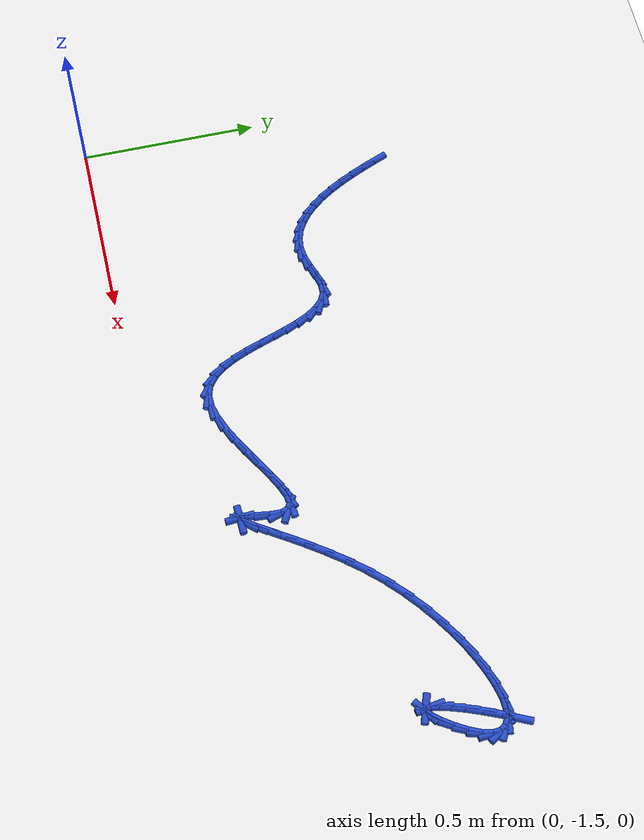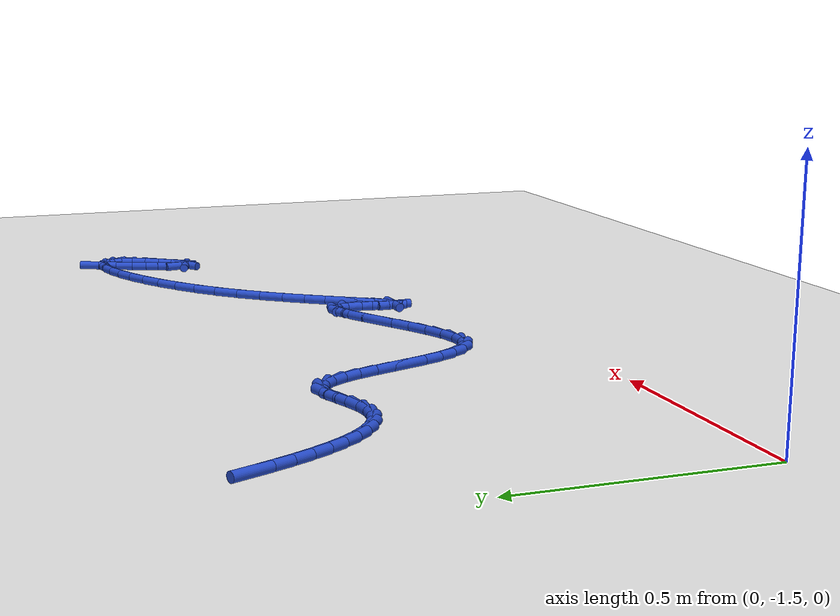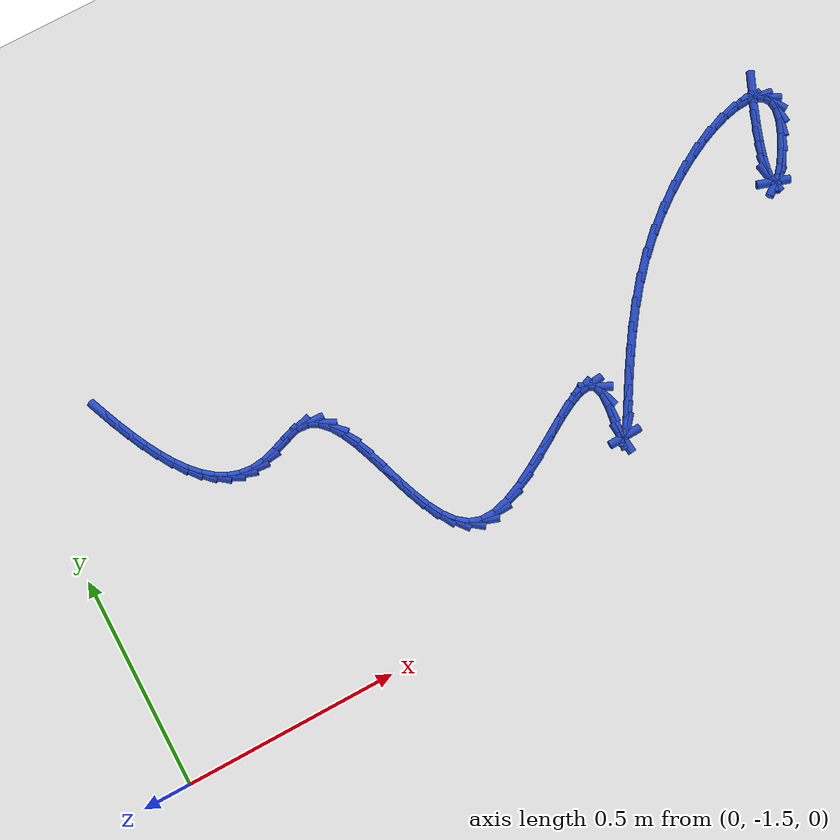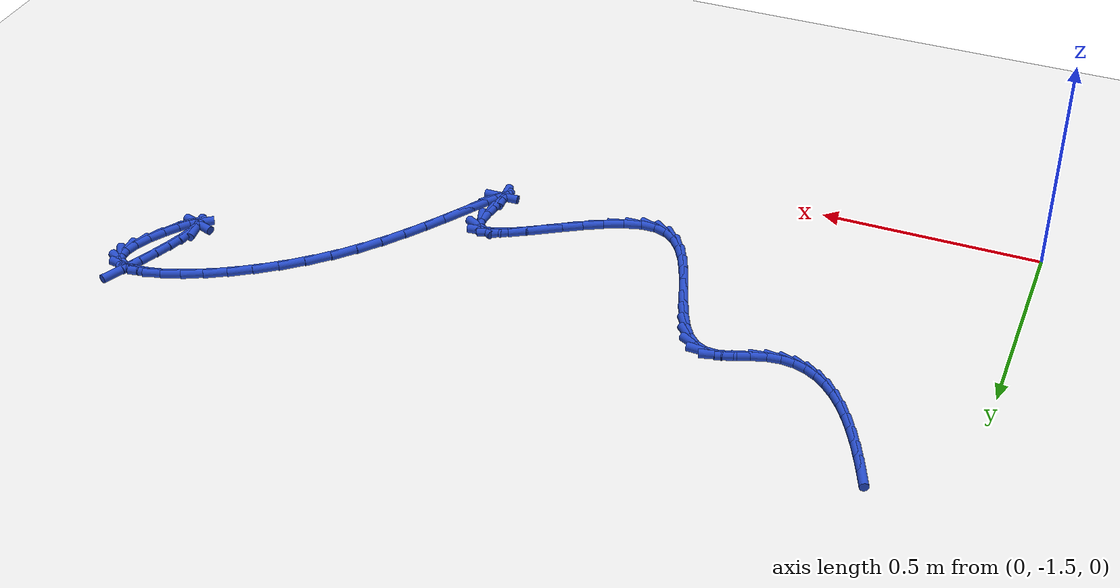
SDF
<sdf version="1.6">
 <world name="default">
  <model name="ground_plane">
   <static>1</static>
   <link name="link">
    <collision name="collision">
     <geometry><plane><normal>0 0 1</normal><size>100 100</size></plane></geometry>
     <surface><friction><ode><mu>100</mu><mu2>50</mu2></ode></friction></surface>
    </collision>
    <visual name="visual">
     <cast_shadows>0</cast_shadows>
     <geometry><plane><normal>0 0 1</normal><size>100 100</size></plane></geometry>
     <material>
      <script><uri>file://media/materials/scripts/gazebo.material</uri><name>Gazebo/WhiteGlow</name></script>
     </material>
    </visual>
   </link>
  </model>
  <model name="line">
   <link name="link_147">
    <pose>1.880417454567638 -0.7078474709768873 0.01 0 1.57 1.140920649720125</pose>
    <collision name="collision">
     <geometry><cylinder><radius>0.01</radius><length>0.08</length></cylinder></geometry>
    </collision>
    <visual name="visual">
     <material>
      <script><name>Gazebo/Blue</name><uri>file://media/materials/scripts/gazebo.material</uri></script>
     </material>
     <geometry><cylinder><radius>0.01</radius><length>0.08</length></cylinder></geometry>
    </visual>
   </link>
   <link name="link_148">
    <pose>1.8598282432529958 -0.7527559408236332 0.01 0 1.57 1.1755597719776898</pose>
    <collision name="collision">
     <geometry><cylinder><radius>0.01</radius><length>0.08</length></cylinder></geometry>
    </collision>
    <visual name="visual">
     <material>
      <script><name>Gazebo/Blue</name><uri>file://media/materials/scripts/gazebo.material</uri></script>
     </material>
     <geometry><cylinder><radius>0.01</radius><length>0.08</length></cylinder></geometry>
    </visual>
   </link>
   <link name="link_149">
    <pose>1.842050364201015 -0.7953693760039964 0.01 0 1.57 1.2130107739233884</pose>
    <collision name="collision">
     <geometry><cylinder><radius>0.01</radius><length>0.08</length></cylinder></geometry>
    </collision>
    <visual name="visual">
     <material>
      <script><name>Gazebo/Blue</name><uri>file://media/materials/scripts/gazebo.material</uri></script>
     </material>
     <geometry><cylinder><radius>0.01</radius><length>0.08</length></cylinder></geometry>
    </visual>
   </link>
   <link name="link_150">
    <pose>1.8274508547640917 -0.83441836433859 0.01 0 1.57 1.2583051965925764</pose>
    <collision name="collision">
     <geometry><cylinder><radius>0.01</radius><length>0.08</length></cylinder></geometry>
    </collision>
    <visual name="visual">
     <material>
      <script><name>Gazebo/Blue</name><uri>file://media/materials/scripts/gazebo.material</uri></script>
     </material>
     <geometry><cylinder><radius>0.01</radius><length>0.08</length></cylinder></geometry>
    </visual>
   </link>
   <link name="link_151">
    <pose>1.816396752294619 -0.8686334936480264 0.01 0 1.57 1.322014872801005</pose>
    <collision name="collision">
     <geometry><cylinder><radius>0.01</radius><length>0.08</length></cylinder></geometry>
    </collision>
    <visual name="visual">
     <material>
      <script><name>Gazebo/Blue</name><uri>file://media/materials/scripts/gazebo.material</uri></script>
     </material>
     <geometry><cylinder><radius>0.01</radius><length>0.08</length></cylinder></geometry>
    </visual>
   </link>
   <link name="link_152">
    <pose>1.8092550941449927 -0.8967453517529187 0.01 0 1.57 1.4336544140061014</pose>
    <collision name="collision">
     <geometry><cylinder><radius>0.01</radius><length>0.08</length></cylinder></geometry>
    </collision>
    <visual name="visual">
     <material>
      <script><name>Gazebo/Blue</name><uri>file://media/materials/scripts/gazebo.material</uri></script>
     </material>
     <geometry><cylinder><radius>0.01</radius><length>0.08</length></cylinder></geometry>
    </visual>
   </link>
   <link name="link_153">
    <pose>1.806392917667607 -0.9174845264738793 0.01 0 1.57 -1.424350368250277</pose>
    <collision name="collision">
     <geometry><cylinder><radius>0.01</radius><length>0.08</length></cylinder></geometry>
    </collision>
    <visual name="visual">
     <material>
      <script><name>Gazebo/Blue</name><uri>file://media/materials/scripts/gazebo.material</uri></script>
     </material>
     <geometry><cylinder><radius>0.01</radius><length>0.08</length></cylinder></geometry>
    </visual>
   </link>
   <link name="link_154">
    <pose>1.8081772602148565 -0.929581605631521 0.01 0 1.57 -0.3110692734461836</pose>
    <collision name="collision">
     <geometry><cylinder><radius>0.01</radius><length>0.08</length></cylinder></geometry>
    </collision>
    <visual name="visual">
     <material>
      <script><name>Gazebo/Blue</name><uri>file://media/materials/scripts/gazebo.material</uri></script>
     </material>
     <geometry><cylinder><radius>0.01</radius><length>0.08</length></cylinder></geometry>
    </visual>
   </link>
   <link name="link_155">
    <pose>1.8149751591391363 -0.9317671770464565 0.01 0 1.57 0.636181770355487</pose>
    <collision name="collision">
     <geometry><cylinder><radius>0.01</radius><length>0.08</length></cylinder></geometry>
    </collision>
    <visual name="visual">
     <material>
      <script><name>Gazebo/Blue</name><uri>file://media/materials/scripts/gazebo.material</uri></script>
     </material>
     <geometry><cylinder><radius>0.01</radius><length>0.08</length></cylinder></geometry>
    </visual>
   </link>
   <link name="link_156">
    <pose>1.82715365179284 -0.9227718285392981 0.01 0 1.57 0.8708792521143253</pose>
    <collision name="collision">
     <geometry><cylinder><radius>0.01</radius><length>0.08</length></cylinder></geometry>
    </collision>
    <visual name="visual">
     <material>
      <script><name>Gazebo/Blue</name><uri>file://media/materials/scripts/gazebo.material</uri></script>
     </material>
     <geometry><cylinder><radius>0.01</radius><length>0.08</length></cylinder></geometry>
    </visual>
   </link>
   <link name="link_157">
    <pose>1.84453478865988 -0.902132742456767 0.01 0 1.57 0.9699756141951363</pose>
    <collision name="collision">
     <geometry><cylinder><radius>0.01</radius><length>0.08</length></cylinder></geometry>
    </collision>
    <visual name="visual">
     <material>
      <script><name>Gazebo/Blue</name><uri>file://media/materials/scripts/gazebo.material</uri></script>
     </material>
     <geometry><cylinder><radius>0.01</radius><length>0.08</length></cylinder></geometry>
    </visual>
   </link>
   <link name="link_158">
    <pose>1.8644174460795855 -0.8731214635149055 0.01 0 1.57 1.0498729820408386</pose>
    <collision name="collision">
     <geometry><cylinder><radius>0.01</radius><length>0.08</length></cylinder></geometry>
    </collision>
    <visual name="visual">
     <material>
      <script><name>Gazebo/Blue</name><uri>file://media/materials/scripts/gazebo.material</uri></script>
     </material>
     <geometry><cylinder><radius>0.01</radius><length>0.08</length></cylinder></geometry>
    </visual>
   </link>
   <link name="link_159">
    <pose>1.8833708057365026 -0.8400895032111889 0.01 0 1.57 1.1510566192938005</pose>
    <collision name="collision">
     <geometry><cylinder><radius>0.01</radius><length>0.08</length></cylinder></geometry>
    </collision>
    <visual name="visual">
     <material>
      <script><name>Gazebo/Blue</name><uri>file://media/materials/scripts/gazebo.material</uri></script>
     </material>
     <geometry><cylinder><radius>0.01</radius><length>0.08</length></cylinder></geometry>
    </visual>
   </link>
   <link name="link_160">
    <pose>1.8979639763291032 -0.8073884810643512 0.01 0 1.57 1.3296470702275465</pose>
    <collision name="collision">
     <geometry><cylinder><radius>0.01</radius><length>0.08</length></cylinder></geometry>
    </collision>
    <visual name="visual">
     <material>
      <script><name>Gazebo/Blue</name><uri>file://media/materials/scripts/gazebo.material</uri></script>
     </material>
     <geometry><cylinder><radius>0.01</radius><length>0.08</length></cylinder></geometry>
    </visual>
   </link>
   <link name="link_161">
    <pose>1.9048866897512042 -0.7792399465233099 0.01 0 1.57 -1.4844622214566678</pose>
    <collision name="collision">
     <geometry><cylinder><radius>0.01</radius><length>0.08</length></cylinder></geometry>
    </collision>
    <visual name="visual">
     <material>
      <script><name>Gazebo/Blue</name><uri>file://media/materials/scripts/gazebo.material</uri></script>
     </material>
     <geometry><cylinder><radius>0.01</radius><length>0.08</length></cylinder></geometry>
    </visual>
   </link>
   <link name="link_162">
    <pose>1.9030065830614629 -0.7575169763735492 0.01 0 1.57 -1.0001750099670772</pose>
    <collision name="collision">
     <geometry><cylinder><radius>0.01</radius><length>0.08</length></cylinder></geometry>
    </collision>
    <visual name="visual">
     <material>
      <script><name>Gazebo/Blue</name><uri>file://media/materials/scripts/gazebo.material</uri></script>
     </material>
     <geometry><cylinder><radius>0.01</radius><length>0.08</length></cylinder></geometry>
    </visual>
   </link>
   <link name="link_163">
    <pose>1.8930817963716158 -0.742054085386022 0.01 0 1.57 -0.5030355205086069</pose>
    <collision name="collision">
     <geometry><cylinder><radius>0.01</radius><length>0.08</length></cylinder></geometry>
    </collision>
    <visual name="visual">
     <material>
      <script><name>Gazebo/Blue</name><uri>file://media/materials/scripts/gazebo.material</uri></script>
     </material>
     <geometry><cylinder><radius>0.01</radius><length>0.08</length></cylinder></geometry>
    </visual>
   </link>
   <link name="link_164">
    <pose>1.8759332514425517 -0.7326180897977026 0.01 0 1.57 -0.15343709844425876</pose>
    <collision name="collision">
     <geometry><cylinder><radius>0.01</radius><length>0.08</length></cylinder></geometry>
    </collision>
    <visual name="visual">
     <material>
      <script><name>Gazebo/Blue</name><uri>file://media/materials/scripts/gazebo.material</uri></script>
     </material>
     <geometry><cylinder><radius>0.01</radius><length>0.08</length></cylinder></geometry>
    </visual>
   </link>
   <link name="link_165">
    <pose>1.8523818700351617 -0.7289758058455655 0.01 0 1.57 0.06574879093967434</pose>
    <collision name="collision">
     <geometry><cylinder><radius>0.01</radius><length>0.08</length></cylinder></geometry>
    </collision>
    <visual name="visual">
     <material>
      <script><name>Gazebo/Blue</name><uri>file://media/materials/scripts/gazebo.material</uri></script>
     </material>
     <geometry><cylinder><radius>0.01</radius><length>0.08</length></cylinder></geometry>
    </visual>
   </link>
   <link name="link_166">
    <pose>1.8232485739103366 -0.7308940497665853 0.01 0 1.57 0.21060037316124847</pose>
    <collision name="collision">
     <geometry><cylinder><radius>0.01</radius><length>0.08</length></cylinder></geometry>
    </collision>
    <visual name="visual">
     <material>
      <script><name>Gazebo/Blue</name><uri>file://media/materials/scripts/gazebo.material</uri></script>
     </material>
     <geometry><cylinder><radius>0.01</radius><length>0.08</length></cylinder></geometry>
    </visual>
   </link>
   <link name="link_167">
    <pose>1.7893542848289654 -0.7381396377977363 0.01 0 1.57 0.31527339754669087</pose>
    <collision name="collision">
     <geometry><cylinder><radius>0.01</radius><length>0.08</length></cylinder></geometry>
    </collision>
    <visual name="visual">
     <material>
      <script><name>Gazebo/Blue</name><uri>file://media/materials/scripts/gazebo.material</uri></script>
     </material>
     <geometry><cylinder><radius>0.01</radius><length>0.08</length></cylinder></geometry>
    </visual>
   </link>
   <link name="link_168">
    <pose>1.751519924551939 -0.7504793861759929 0.01 0 1.57 0.39763319896849536</pose>
    <collision name="collision">
     <geometry><cylinder><radius>0.01</radius><length>0.08</length></cylinder></geometry>
    </collision>
    <visual name="visual">
     <material>
      <script><name>Gazebo/Blue</name><uri>file://media/materials/scripts/gazebo.material</uri></script>
     </material>
     <geometry><cylinder><radius>0.01</radius><length>0.08</length></cylinder></geometry>
    </visual>
   </link>
   <link name="link_169">
    <pose>1.710566414840147 -0.767680111138329 0.01 0 1.57 0.46738885182836876</pose>
    <collision name="collision">
     <geometry><cylinder><radius>0.01</radius><length>0.08</length></cylinder></geometry>
    </collision>
    <visual name="visual">
     <material>
      <script><name>Gazebo/Blue</name><uri>file://media/materials/scripts/gazebo.material</uri></script>
     </material>
     <geometry><cylinder><radius>0.01</radius><length>0.08</length></cylinder></geometry>
    </visual>
   </link>
   <link name="link_170">
    <pose>1.66731467745448 -0.78950862892172 0.01 0 1.57 0.5302599180292319</pose>
    <collision name="collision">
     <geometry><cylinder><radius>0.01</radius><length>0.08</length></cylinder></geometry>
    </collision>
    <visual name="visual">
     <material>
      <script><name>Gazebo/Blue</name><uri>file://media/materials/scripts/gazebo.material</uri></script>
     </material>
     <geometry><cylinder><radius>0.01</radius><length>0.08</length></cylinder></geometry>
    </visual>
   </link>
   <link name="link_171">
    <pose>1.6225856341558278 -0.8157317557631396 0.01 0 1.57 0.5899464922059662</pose>
    <collision name="collision">
     <geometry><cylinder><radius>0.01</radius><length>0.08</length></cylinder></geometry>
    </collision>
    <visual name="visual">
     <material>
      <script><name>Gazebo/Blue</name><uri>file://media/materials/scripts/gazebo.material</uri></script>
     </material>
     <geometry><cylinder><radius>0.01</radius><length>0.08</length></cylinder></geometry>
    </visual>
   </link>
   <link name="link_172">
    <pose>1.5772002067050812 -0.8461163078995626 0.01 0 1.57 0.649097887391694</pose>
    <collision name="collision">
     <geometry><cylinder><radius>0.01</radius><length>0.08</length></cylinder></geometry>
    </collision>
    <visual name="visual">
     <material>
      <script><name>Gazebo/Blue</name><uri>file://media/materials/scripts/gazebo.material</uri></script>
     </material>
     <geometry><cylinder><radius>0.01</radius><length>0.08</length></cylinder></geometry>
    </visual>
   </link>
   <link name="link_173">
    <pose>1.53197931686313 -0.8804291015679632 0.01 0 1.57 0.7098209582909975</pose>
    <collision name="collision">
     <geometry><cylinder><radius>0.01</radius><length>0.08</length></cylinder></geometry>
    </collision>
    <visual name="visual">
     <material>
      <script><name>Gazebo/Blue</name><uri>file://media/materials/scripts/gazebo.material</uri></script>
     </material>
     <geometry><cylinder><radius>0.01</radius><length>0.08</length></cylinder></geometry>
    </visual>
   </link>
   <link name="link_174">
    <pose>1.4877438863908643 -0.9184369530053158 0.01 0 1.57 0.773964360034135</pose>
    <collision name="collision">
     <geometry><cylinder><radius>0.01</radius><length>0.08</length></cylinder></geometry>
    </collision>
    <visual name="visual">
     <material>
      <script><name>Gazebo/Blue</name><uri>file://media/materials/scripts/gazebo.material</uri></script>
     </material>
     <geometry><cylinder><radius>0.01</radius><length>0.08</length></cylinder></geometry>
    </visual>
   </link>
   <link name="link_175">
    <pose>1.4453148370491742 -0.959906678448595 0.01 0 1.57 0.8411513842361525</pose>
    <collision name="collision">
     <geometry><cylinder><radius>0.01</radius><length>0.08</length></cylinder></geometry>
    </collision>
    <visual name="visual">
     <material>
      <script><name>Gazebo/Blue</name><uri>file://media/materials/scripts/gazebo.material</uri></script>
     </material>
     <geometry><cylinder><radius>0.01</radius><length>0.08</length></cylinder></geometry>
    </visual>
   </link>
   <link name="link_176">
    <pose>1.405458281396202 -1.0044750805634708 0.01 0 1.57 0.8986713990842615</pose>
    <collision name="collision">
     <geometry><cylinder><radius>0.01</radius><length>0.08</length></cylinder></geometry>
    </collision>
    <visual name="visual">
     <material>
      <script><name>Gazebo/Blue</name><uri>file://media/materials/scripts/gazebo.material</uri></script>
     </material>
     <geometry><cylinder><radius>0.01</radius><length>0.08</length></cylinder></geometry>
    </visual>
   </link>
   <link name="link_177">
    <pose>1.368551545903223 -1.050856717846931 0.01 0 1.57 0.9431022279500699</pose>
    <collision name="collision">
     <geometry><cylinder><radius>0.01</radius><length>0.08</length></cylinder></geometry>
    </collision>
    <visual name="visual">
     <material>
      <script><name>Gazebo/Blue</name><uri>file://media/materials/scripts/gazebo.material</uri></script>
     </material>
     <geometry><cylinder><radius>0.01</radius><length>0.08</length></cylinder></geometry>
    </visual>
   </link>
   <link name="link_178">
    <pose>1.3348038775784756 -1.0973674454732265 0.01 0 1.57 0.9764964773916157</pose>
    <collision name="collision">
     <geometry><cylinder><radius>0.01</radius><length>0.08</length></cylinder></geometry>
    </collision>
    <visual name="visual">
     <material>
      <script><name>Gazebo/Blue</name><uri>file://media/materials/scripts/gazebo.material</uri></script>
     </material>
     <geometry><cylinder><radius>0.01</radius><length>0.08</length></cylinder></geometry>
    </visual>
   </link>
   <link name="link_179">
    <pose>1.3044238543030713 -1.142321531372076 0.01 0 1.57 0.9996432924485401</pose>
    <collision name="collision">
     <geometry><cylinder><radius>0.01</radius><length>0.08</length></cylinder></geometry>
    </collision>
    <visual name="visual">
     <material>
      <script><name>Gazebo/Blue</name><uri>file://media/materials/scripts/gazebo.material</uri></script>
     </material>
     <geometry><cylinder><radius>0.01</radius><length>0.08</length></cylinder></geometry>
    </visual>
   </link>
   <link name="link_180">
    <pose>1.2776200539581193 -1.184033243473196 0.01 0 1.57 1.0116254781381082</pose>
    <collision name="collision">
     <geometry><cylinder><radius>0.01</radius><length>0.08</length></cylinder></geometry>
    </collision>
    <visual name="visual">
     <material>
      <script><name>Gazebo/Blue</name><uri>file://media/materials/scripts/gazebo.material</uri></script>
     </material>
     <geometry><cylinder><radius>0.01</radius><length>0.08</length></cylinder></geometry>
    </visual>
   </link>
   <link name="link_181">
    <pose>1.25460105442473 -1.220816849706305 0.01 0 1.57 1.00816677869452</pose>
    <collision name="collision">
     <geometry><cylinder><radius>0.01</radius><length>0.08</length></cylinder></geometry>
    </collision>
    <visual name="visual">
     <material>
      <script><name>Gazebo/Blue</name><uri>file://media/materials/scripts/gazebo.material</uri></script>
     </material>
     <geometry><cylinder><radius>0.01</radius><length>0.08</length></cylinder></geometry>
    </visual>
   </link>
   <link name="link_182">
    <pose>1.2355754335840137 -1.2509866180011202 0.01 0 1.57 0.9751242100211122</pose>
    <collision name="collision">
     <geometry><cylinder><radius>0.01</radius><length>0.08</length></cylinder></geometry>
    </collision>
    <visual name="visual">
     <material>
      <script><name>Gazebo/Blue</name><uri>file://media/materials/scripts/gazebo.material</uri></script>
     </material>
     <geometry><cylinder><radius>0.01</radius><length>0.08</length></cylinder></geometry>
    </visual>
   </link>
   <link name="link_183">
    <pose>1.2207517693170802 -1.2728568162873588 0.01 0 1.57 0.8513068980043053</pose>
    <collision name="collision">
     <geometry><cylinder><radius>0.01</radius><length>0.08</length></cylinder></geometry>
    </collision>
    <visual name="visual">
     <material>
      <script><name>Gazebo/Blue</name><uri>file://media/materials/scripts/gazebo.material</uri></script>
     </material>
     <geometry><cylinder><radius>0.01</radius><length>0.08</length></cylinder></geometry>
    </visual>
   </link>
   <link name="link_184">
    <pose>1.2103386395050404 -1.284741712494739 0.01 0 1.57 0.03689409219474732</pose>
    <collision name="collision">
     <geometry><cylinder><radius>0.01</radius><length>0.08</length></cylinder></geometry>
    </collision>
    <visual name="visual">
     <material>
      <script><name>Gazebo/Blue</name><uri>file://media/materials/scripts/gazebo.material</uri></script>
     </material>
     <geometry><cylinder><radius>0.01</radius><length>0.08</length></cylinder></geometry>
    </visual>
   </link>
   <link name="link_185">
    <pose>1.204544622029004 -1.2849555745529782 0.01 0 1.57 -1.4974037498814896</pose>
    <collision name="collision">
     <geometry><cylinder><radius>0.01</radius><length>0.08</length></cylinder></geometry>
    </collision>
    <visual name="visual">
     <material>
      <script><name>Gazebo/Blue</name><uri>file://media/materials/scripts/gazebo.material</uri></script>
     </material>
     <geometry><cylinder><radius>0.01</radius><length>0.08</length></cylinder></geometry>
    </visual>
   </link>
   <link name="link_186">
    <pose>1.203578294770081 -1.2718126703917934 0.01 0 1.57 1.4330193704455638</pose>
    <collision name="collision">
     <geometry><cylinder><radius>0.01</radius><length>0.08</length></cylinder></geometry>
    </collision>
    <visual name="visual">
     <material>
      <script><name>Gazebo/Blue</name><uri>file://media/materials/scripts/gazebo.material</uri></script>
     </material>
     <geometry><cylinder><radius>0.01</radius><length>0.08</length></cylinder></geometry>
    </visual>
   </link>
   <link name="link_187">
    <pose>1.2074112245600463 -1.2441691057984243 0.01 0 1.57 1.4204514153569598</pose>
    <collision name="collision">
     <geometry><cylinder><radius>0.01</radius><length>0.08</length></cylinder></geometry>
    </collision>
    <visual name="visual">
     <material>
      <script><name>Gazebo/Blue</name><uri>file://media/materials/scripts/gazebo.material</uri></script>
     </material>
     <geometry><cylinder><radius>0.01</radius><length>0.08</length></cylinder></geometry>
    </visual>
   </link>
   <link name="link_188">
    <pose>1.2128848141817585 -1.2080369456882072 0.01 0 1.57 1.518901007698161</pose>
    <collision name="collision">
     <geometry><cylinder><radius>0.01</radius><length>0.08</length></cylinder></geometry>
    </collision>
    <visual name="visual">
     <material>
      <script><name>Gazebo/Blue</name><uri>file://media/materials/scripts/gazebo.material</uri></script>
     </material>
     <geometry><cylinder><radius>0.01</radius><length>0.08</length></cylinder></geometry>
    </visual>
   </link>
   <link name="link_189">
    <pose>1.21462743662847 -1.1744875267833925 0.01 0 1.57 -1.2675819271806505</pose>
    <collision name="collision">
     <geometry><cylinder><radius>0.01</radius><length>0.08</length></cylinder></geometry>
    </collision>
    <visual name="visual">
     <material>
      <script><name>Gazebo/Blue</name><uri>file://media/materials/scripts/gazebo.material</uri></script>
     </material>
     <geometry><cylinder><radius>0.01</radius><length>0.08</length></cylinder></geometry>
    </visual>
   </link>
   <link name="link_190">
    <pose>1.207967127831567 -1.1531991819728786 0.01 0 1.57 -0.4845759333067746</pose>
    <collision name="collision">
     <geometry><cylinder><radius>0.01</radius><length>0.08</length></cylinder></geometry>
    </collision>
    <visual name="visual">
     <material>
      <script><name>Gazebo/Blue</name><uri>file://media/materials/scripts/gazebo.material</uri></script>
     </material>
     <geometry><cylinder><radius>0.01</radius><length>0.08</length></cylinder></geometry>
    </visual>
   </link>
   <link name="link_191">
    <pose>1.1925856788463718 -1.1451017573844713 0.01 0 1.57 0.12452640845875326</pose>
    <collision name="collision">
     <geometry><cylinder><radius>0.01</radius><length>0.08</length></cylinder></geometry>
    </collision>
    <visual name="visual">
     <material>
      <script><name>Gazebo/Blue</name><uri>file://media/materials/scripts/gazebo.material</uri></script>
     </material>
     <geometry><cylinder><radius>0.01</radius><length>0.08</length></cylinder></geometry>
    </visual>
   </link>
   <link name="link_192">
    <pose>1.1697392524144714 -1.1479615381596038 0.01 0 1.57 0.37925074746241205</pose>
    <collision name="collision">
     <geometry><cylinder><radius>0.01</radius><length>0.08</length></cylinder></geometry>
    </collision>
    <visual name="visual">
     <material>
      <script><name>Gazebo/Blue</name><uri>file://media/materials/scripts/gazebo.material</uri></script>
     </material>
     <geometry><cylinder><radius>0.01</radius><length>0.08</length></cylinder></geometry>
    </visual>
   </link>
   <link name="link_193">
    <pose>1.1406861675346531 -1.1595404766311217 0.01 0 1.57 0.48826036203750894</pose>
    <collision name="collision">
     <geometry><cylinder><radius>0.01</radius><length>0.08</length></cylinder></geometry>
    </collision>
    <visual name="visual">
     <material>
      <script><name>Gazebo/Blue</name><uri>file://media/materials/scripts/gazebo.material</uri></script>
     </material>
     <geometry><cylinder><radius>0.01</radius><length>0.08</length></cylinder></geometry>
    </visual>
   </link>
   <link name="link_194">
    <pose>1.1066847432057059 -1.1776005251318724 0.01 0 1.57 0.5343154877263823</pose>
    <collision name="collision">
     <geometry><cylinder><radius>0.01</radius><length>0.08</length></cylinder></geometry>
    </collision>
    <visual name="visual">
     <material>
      <script><name>Gazebo/Blue</name><uri>file://media/materials/scripts/gazebo.material</uri></script>
     </material>
     <geometry><cylinder><radius>0.01</radius><length>0.08</length></cylinder></geometry>
    </visual>
   </link>
   <link name="link_195">
    <pose>1.0689932984264179 -1.1999036359947024 0.01 0 1.57 0.5447010732686066</pose>
    <collision name="collision">
     <geometry><cylinder><radius>0.01</radius><length>0.08</length></cylinder></geometry>
    </collision>
    <visual name="visual">
     <material>
      <script><name>Gazebo/Blue</name><uri>file://media/materials/scripts/gazebo.material</uri></script>
     </material>
     <geometry><cylinder><radius>0.01</radius><length>0.08</length></cylinder></geometry>
    </visual>
   </link>
   <link name="link_196">
    <pose>1.0288701521955772 -1.2242117615524575 0.01 0 1.57 0.5278115453043011</pose>
    <collision name="collision">
     <geometry><cylinder><radius>0.01</radius><length>0.08</length></cylinder></geometry>
    </collision>
    <visual name="visual">
     <material>
      <script><name>Gazebo/Blue</name><uri>file://media/materials/scripts/gazebo.material</uri></script>
     </material>
     <geometry><cylinder><radius>0.01</radius><length>0.08</length></cylinder></geometry>
    </visual>
   </link>
   <link name="link_197">
    <pose>0.9875736235119718 -1.248286854137985 0.01 0 1.57 0.48283669395664164</pose>
    <collision name="collision">
     <geometry><cylinder><radius>0.01</radius><length>0.08</length></cylinder></geometry>
    </collision>
    <visual name="visual">
     <material>
      <script><name>Gazebo/Blue</name><uri>file://media/materials/scripts/gazebo.material</uri></script>
     </material>
     <geometry><cylinder><radius>0.01</radius><length>0.08</length></cylinder></geometry>
    </visual>
   </link>
   <link name="link_198">
    <pose>0.94636203137439 -1.269890866084131 0.01 0 1.57 0.40082578469218155</pose>
    <collision name="collision">
     <geometry><cylinder><radius>0.01</radius><length>0.08</length></cylinder></geometry>
    </collision>
    <visual name="visual">
     <material>
      <script><name>Gazebo/Blue</name><uri>file://media/materials/scripts/gazebo.material</uri></script>
     </material>
     <geometry><cylinder><radius>0.01</radius><length>0.08</length></cylinder></geometry>
    </visual>
   </link>
   <link name="link_199">
    <pose>0.90649369478162 -1.2867857497237427 0.01 0 1.57 0.26085050248406694</pose>
    <collision name="collision">
     <geometry><cylinder><radius>0.01</radius><length>0.08</length></cylinder></geometry>
    </collision>
    <visual name="visual">
     <material>
      <script><name>Gazebo/Blue</name><uri>file://media/materials/scripts/gazebo.material</uri></script>
     </material>
     <geometry><cylinder><radius>0.01</radius><length>0.08</length></cylinder></geometry>
    </visual>
   </link>
   <link name="link_200">
    <pose>0.8692269327324501 -1.296733457389666 0.01 0 1.57 0.022840503875980654</pose>
    <collision name="collision">
     <geometry><cylinder><radius>0.01</radius><length>0.08</length></cylinder></geometry>
    </collision>
    <visual name="visual">
     <material>
      <script><name>Gazebo/Blue</name><uri>file://media/materials/scripts/gazebo.material</uri></script>
     </material>
     <geometry><cylinder><radius>0.01</radius><length>0.08</length></cylinder></geometry>
    </visual>
   </link>
   <link name="link_201">
    <pose>0.8358197216463128 -1.2974966276409916 0.01 0 1.57 -0.3285004937985048</pose>
    <collision name="collision">
     <geometry><cylinder><radius>0.01</radius><length>0.08</length></cylinder></geometry>
    </collision>
    <visual name="visual">
     <material>
      <script><name>Gazebo/Blue</name><uri>file://media/materials/scripts/gazebo.material</uri></script>
     </material>
     <geometry><cylinder><radius>0.01</radius><length>0.08</length></cylinder></geometry>
    </visual>
   </link>
   <link name="link_202">
    <pose>0.8070965071566919 -1.2877063115613623 0.01 0 1.57 -0.6634002639224547</pose>
    <collision name="collision">
     <geometry><cylinder><radius>0.01</radius><length>0.08</length></cylinder></geometry>
    </collision>
    <visual name="visual">
     <material>
      <script><name>Gazebo/Blue</name><uri>file://media/materials/scripts/gazebo.material</uri></script>
     </material>
     <geometry><cylinder><radius>0.01</radius><length>0.08</length></cylinder></geometry>
    </visual>
   </link>
   <link name="link_203">
    <pose>0.7826001407451384 -1.2685607421947391 0.01 0 1.57 -0.9075694595107189</pose>
    <collision name="collision">
     <geometry><cylinder><radius>0.01</radius><length>0.08</length></cylinder></geometry>
    </collision>
    <visual name="visual">
     <material>
      <script><name>Gazebo/Blue</name><uri>file://media/materials/scripts/gazebo.material</uri></script>
     </material>
     <geometry><cylinder><radius>0.01</radius><length>0.08</length></cylinder></geometry>
    </visual>
   </link>
   <link name="link_204">
    <pose>0.7616377903556045 -1.241730254088634 0.01 0 1.57 -1.0666362653607797</pose>
    <collision name="collision">
     <geometry><cylinder><radius>0.01</radius><length>0.08</length></cylinder></geometry>
    </collision>
    <visual name="visual">
     <material>
      <script><name>Gazebo/Blue</name><uri>file://media/materials/scripts/gazebo.material</uri></script>
     </material>
     <geometry><cylinder><radius>0.01</radius><length>0.08</length></cylinder></geometry>
    </visual>
   </link>
   <link name="link_205">
    <pose>0.7435166239320427 -1.208885181790557 0.01 0 1.57 -1.1651203047880996</pose>
    <collision name="collision">
     <geometry><cylinder><radius>0.01</radius><length>0.08</length></cylinder></geometry>
    </collision>
    <visual name="visual">
     <material>
      <script><name>Gazebo/Blue</name><uri>file://media/materials/scripts/gazebo.material</uri></script>
     </material>
     <geometry><cylinder><radius>0.01</radius><length>0.08</length></cylinder></geometry>
    </visual>
   </link>
   <link name="link_206">
    <pose>0.727543809418405 -1.1716958598480183 0.01 0 1.57 -1.22154745388154</pose>
    <collision name="collision">
     <geometry><cylinder><radius>0.01</radius><length>0.08</length></cylinder></geometry>
    </collision>
    <visual name="visual">
     <material>
      <script><name>Gazebo/Blue</name><uri>file://media/materials/scripts/gazebo.material</uri></script>
     </material>
     <geometry><cylinder><radius>0.01</radius><length>0.08</length></cylinder></geometry>
    </visual>
   </link>
   <link name="link_207">
    <pose>0.7130265147586441 -1.1318326228085287 0.01 0 1.57 -1.2461342421906707</pose>
    <collision name="collision">
     <geometry><cylinder><radius>0.01</radius><length>0.08</length></cylinder></geometry>
    </collision>
    <visual name="visual">
     <material>
      <script><name>Gazebo/Blue</name><uri>file://media/materials/scripts/gazebo.material</uri></script>
     </material>
     <geometry><cylinder><radius>0.01</radius><length>0.08</length></cylinder></geometry>
    </visual>
   </link>
   <link name="link_208">
    <pose>0.6992719078967123 -1.0909658052195992 0.01 0 1.57 -1.242684833957132</pose>
    <collision name="collision">
     <geometry><cylinder><radius>0.01</radius><length>0.08</length></cylinder></geometry>
    </collision>
    <visual name="visual">
     <material>
      <script><name>Gazebo/Blue</name><uri>file://media/materials/scripts/gazebo.material</uri></script>
     </material>
     <geometry><cylinder><radius>0.01</radius><length>0.08</length></cylinder></geometry>
    </visual>
   </link>
   <link name="link_209">
    <pose>0.6855871567765628 -1.0507657416287415 0.01 0 1.57 -1.2095015837089291</pose>
    <collision name="collision">
     <geometry><cylinder><radius>0.01</radius><length>0.08</length></cylinder></geometry>
    </collision>
    <visual name="visual">
     <material>
      <script><name>Gazebo/Blue</name><uri>file://media/materials/scripts/gazebo.material</uri></script>
     </material>
     <geometry><cylinder><radius>0.01</radius><length>0.08</length></cylinder></geometry>
    </visual>
   </link>
   <link name="link_210">
    <pose>0.6712794293421463 -1.0129027665834633 0.01 0 1.57 -1.1384397745374928</pose>
    <collision name="collision">
     <geometry><cylinder><radius>0.01</radius><length>0.08</length></cylinder></geometry>
    </collision>
    <visual name="visual">
     <material>
      <script><name>Gazebo/Blue</name><uri>file://media/materials/scripts/gazebo.material</uri></script>
     </material>
     <geometry><cylinder><radius>0.01</radius><length>0.08</length></cylinder></geometry>
    </visual>
   </link>
   <link name="link_211">
    <pose>0.6556558935374164 -0.9790472146312765 0.01 0 1.57 -1.0116598708919549</pose>
    <collision name="collision">
     <geometry><cylinder><radius>0.01</radius><length>0.08</length></cylinder></geometry>
    </collision>
    <visual name="visual">
     <material>
      <script><name>Gazebo/Blue</name><uri>file://media/materials/scripts/gazebo.material</uri></script>
     </material>
     <geometry><cylinder><radius>0.01</radius><length>0.08</length></cylinder></geometry>
    </visual>
   </link>
   <link name="link_212">
    <pose>0.638023717306325 -0.9508694203196918 0.01 0 1.57 -0.7974484311523351</pose>
    <collision name="collision">
     <geometry><cylinder><radius>0.01</radius><length>0.08</length></cylinder></geometry>
    </collision>
    <visual name="visual">
     <material>
      <script><name>Gazebo/Blue</name><uri>file://media/materials/scripts/gazebo.material</uri></script>
     </material>
     <geometry><cylinder><radius>0.01</radius><length>0.08</length></cylinder></geometry>
    </visual>
   </link>
   <link name="link_213">
    <pose>0.6176900685928248 -0.9300397181962199 0.01 0 1.57 -0.4618691818549168</pose>
    <collision name="collision">
     <geometry><cylinder><radius>0.01</radius><length>0.08</length></cylinder></geometry>
    </collision>
    <visual name="visual">
     <material>
      <script><name>Gazebo/Blue</name><uri>file://media/materials/scripts/gazebo.material</uri></script>
     </material>
     <geometry><cylinder><radius>0.01</radius><length>0.08</length></cylinder></geometry>
    </visual>
   </link>
   <link name="link_214">
    <pose>0.593962115340868 -0.918228442808371 0.01 0 1.57 -0.04182759227175572</pose>
    <collision name="collision">
     <geometry><cylinder><radius>0.01</radius><length>0.08</length></cylinder></geometry>
    </collision>
    <visual name="visual">
     <material>
      <script><name>Gazebo/Blue</name><uri>file://media/materials/scripts/gazebo.material</uri></script>
     </material>
     <geometry><cylinder><radius>0.01</radius><length>0.08</length></cylinder></geometry>
    </visual>
   </link>
   <link name="link_215">
    <pose>0.5661619610857054 -0.9170649506837034 0.01 0 1.57 0.2582513833948663</pose>
    <collision name="collision">
     <geometry><cylinder><radius>0.01</radius><length>0.08</length></cylinder></geometry>
    </collision>
    <visual name="visual">
     <material>
      <script><name>Gazebo/Blue</name><uri>file://media/materials/scripts/gazebo.material</uri></script>
     </material>
     <geometry><cylinder><radius>0.01</radius><length>0.08</length></cylinder></geometry>
    </visual>
   </link>
   <link name="link_216">
    <pose>0.5346262276794905 -0.9253951161961818 0.01 0 1.57 0.35014767167568867</pose>
    <collision name="collision">
     <geometry><cylinder><radius>0.01</radius><length>0.08</length></cylinder></geometry>
    </collision>
    <visual name="visual">
     <material>
      <script><name>Gazebo/Blue</name><uri>file://media/materials/scripts/gazebo.material</uri></script>
     </material>
     <geometry><cylinder><radius>0.01</radius><length>0.08</length></cylinder></geometry>
    </visual>
   </link>
   <link name="link_217">
    <pose>0.5013361745425836 -0.9375525055199491 0.01 0 1.57 0.29255634084567894</pose>
    <collision name="collision">
     <geometry><cylinder><radius>0.01</radius><length>0.08</length></cylinder></geometry>
    </collision>
    <visual name="visual">
     <material>
      <script><name>Gazebo/Blue</name><uri>file://media/materials/scripts/gazebo.material</uri></script>
     </material>
     <geometry><cylinder><radius>0.01</radius><length>0.08</length></cylinder></geometry>
    </visual>
   </link>
   <link name="link_218">
    <pose>0.468420516397277 -0.9474666655954126 0.01 0 1.57 0.11070177430677869</pose>
    <collision name="collision">
     <geometry><cylinder><radius>0.01</radius><length>0.08</length></cylinder></geometry>
    </collision>
    <visual name="visual">
     <material>
      <script><name>Gazebo/Blue</name><uri>file://media/materials/scripts/gazebo.material</uri></script>
     </material>
     <geometry><cylinder><radius>0.01</radius><length>0.08</length></cylinder></geometry>
    </visual>
   </link>
   <link name="link_219">
    <pose>0.4373784539652287 -0.9509171837458174 0.01 0 1.57 -0.10454287545926955</pose>
    <collision name="collision">
     <geometry><cylinder><radius>0.01</radius><length>0.08</length></cylinder></geometry>
    </collision>
    <visual name="visual">
     <material>
      <script><name>Gazebo/Blue</name><uri>file://media/materials/scripts/gazebo.material</uri></script>
     </material>
     <geometry><cylinder><radius>0.01</radius><length>0.08</length></cylinder></geometry>
    </visual>
   </link>
   <link name="link_220">
    <pose>0.40828649989513677 -0.9478646986840501 0.01 0 1.57 -0.31956567237292316</pose>
    <collision name="collision">
     <geometry><cylinder><radius>0.01</radius><length>0.08</length></cylinder></geometry>
    </collision>
    <visual name="visual">
     <material>
      <script><name>Gazebo/Blue</name><uri>file://media/materials/scripts/gazebo.material</uri></script>
     </material>
     <geometry><cylinder><radius>0.01</radius><length>0.08</length></cylinder></geometry>
    </visual>
   </link>
   <link name="link_221">
    <pose>0.3810258216581954 -0.9388439371760208 0.01 0 1.57 -0.5148666538377755</pose>
    <collision name="collision">
     <geometry><cylinder><radius>0.01</radius><length>0.08</length></cylinder></geometry>
    </collision>
    <visual name="visual">
     <material>
      <script><name>Gazebo/Blue</name><uri>file://media/materials/scripts/gazebo.material</uri></script>
     </material>
     <geometry><cylinder><radius>0.01</radius><length>0.08</length></cylinder></geometry>
    </visual>
   </link>
   <link name="link_222">
    <pose>0.3554775867255984 -0.92438962598764 0.01 0 1.57 -0.6795443676584958</pose>
    <collision name="collision">
     <geometry><cylinder><radius>0.01</radius><length>0.08</length></cylinder></geometry>
    </collision>
    <visual name="visual">
     <material>
      <script><name>Gazebo/Blue</name><uri>file://media/materials/scripts/gazebo.material</uri></script>
     </material>
     <geometry><cylinder><radius>0.01</radius><length>0.08</length></cylinder></geometry>
    </visual>
   </link>
   <link name="link_223">
    <pose>0.3315229625685401 -0.9050364918848179 0.01 0 1.57 -0.8121766666798852</pose>
    <collision name="collision">
     <geometry><cylinder><radius>0.01</radius><length>0.08</length></cylinder></geometry>
    </collision>
    <visual name="visual">
     <material>
      <script><name>Gazebo/Blue</name><uri>file://media/materials/scripts/gazebo.material</uri></script>
     </material>
     <geometry><cylinder><radius>0.01</radius><length>0.08</length></cylinder></geometry>
    </visual>
   </link>
   <link name="link_224">
    <pose>0.30904311665821416 -0.8813192616334646 0.01 0 1.57 -0.9166029417249969</pose>
    <collision name="collision">
     <geometry><cylinder><radius>0.01</radius><length>0.08</length></cylinder></geometry>
    </collision>
    <visual name="visual">
     <material>
      <script><name>Gazebo/Blue</name><uri>file://media/materials/scripts/gazebo.material</uri></script>
     </material>
     <geometry><cylinder><radius>0.01</radius><length>0.08</length></cylinder></geometry>
    </visual>
   </link>
   <link name="link_225">
    <pose>0.2879192164658147 -0.8537726619994905 0.01 0 1.57 -0.9980772251123836</pose>
    <collision name="collision">
     <geometry><cylinder><radius>0.01</radius><length>0.08</length></cylinder></geometry>
    </collision>
    <visual name="visual">
     <material>
      <script><name>Gazebo/Blue</name><uri>file://media/materials/scripts/gazebo.material</uri></script>
     </material>
     <geometry><cylinder><radius>0.01</radius><length>0.08</length></cylinder></geometry>
    </visual>
   </link>
   <link name="link_226">
    <pose>0.268032429462536 -0.8229314197488063 0.01 0 1.57 -1.061399379035</pose>
    <collision name="collision">
     <geometry><cylinder><radius>0.01</radius><length>0.08</length></cylinder></geometry>
    </collision>
    <visual name="visual">
     <material>
      <script><name>Gazebo/Blue</name><uri>file://media/materials/scripts/gazebo.material</uri></script>
     </material>
     <geometry><cylinder><radius>0.01</radius><length>0.08</length></cylinder></geometry>
    </visual>
   </link>
   <link name="link_227">
    <pose>0.2492639231195718 -0.7893302616473215 0.01 0 1.57 -1.1103719801094625</pose>
    <collision name="collision">
     <geometry><cylinder><radius>0.01</radius><length>0.08</length></cylinder></geometry>
    </collision>
    <visual name="visual">
     <material>
      <script><name>Gazebo/Blue</name><uri>file://media/materials/scripts/gazebo.material</uri></script>
     </material>
     <geometry><cylinder><radius>0.01</radius><length>0.08</length></cylinder></geometry>
    </visual>
   </link>
   <link name="link_228">
    <pose>0.2314948649081163 -0.7535039144609471 0.01 0 1.57 -1.1478121087033568</pose>
    <collision name="collision">
     <geometry><cylinder><radius>0.01</radius><length>0.08</length></cylinder></geometry>
    </collision>
    <visual name="visual">
     <material>
      <script><name>Gazebo/Blue</name><uri>file://media/materials/scripts/gazebo.material</uri></script>
     </material>
     <geometry><cylinder><radius>0.01</radius><length>0.08</length></cylinder></geometry>
    </visual>
   </link>
   <link name="link_229">
    <pose>0.21460642229936333 -0.7159871049555926 0.01 0 1.57 -1.175716629870744</pose>
    <collision name="collision">
     <geometry><cylinder><radius>0.01</radius><length>0.08</length></cylinder></geometry>
    </collision>
    <visual name="visual">
     <material>
      <script><name>Gazebo/Blue</name><uri>file://media/materials/scripts/gazebo.material</uri></script>
     </material>
     <geometry><cylinder><radius>0.01</radius><length>0.08</length></cylinder></geometry>
    </visual>
   </link>
   <link name="link_230">
    <pose>0.19847976276450702 -0.6773145598971688 0.01 0 1.57 -1.1954279077700873</pose>
    <collision name="collision">
     <geometry><cylinder><radius>0.01</radius><length>0.08</length></cylinder></geometry>
    </collision>
    <visual name="visual">
     <material>
      <script><name>Gazebo/Blue</name><uri>file://media/materials/scripts/gazebo.material</uri></script>
     </material>
     <geometry><cylinder><radius>0.01</radius><length>0.08</length></cylinder></geometry>
    </visual>
   </link>
  </model>
 </world>
</sdf>
